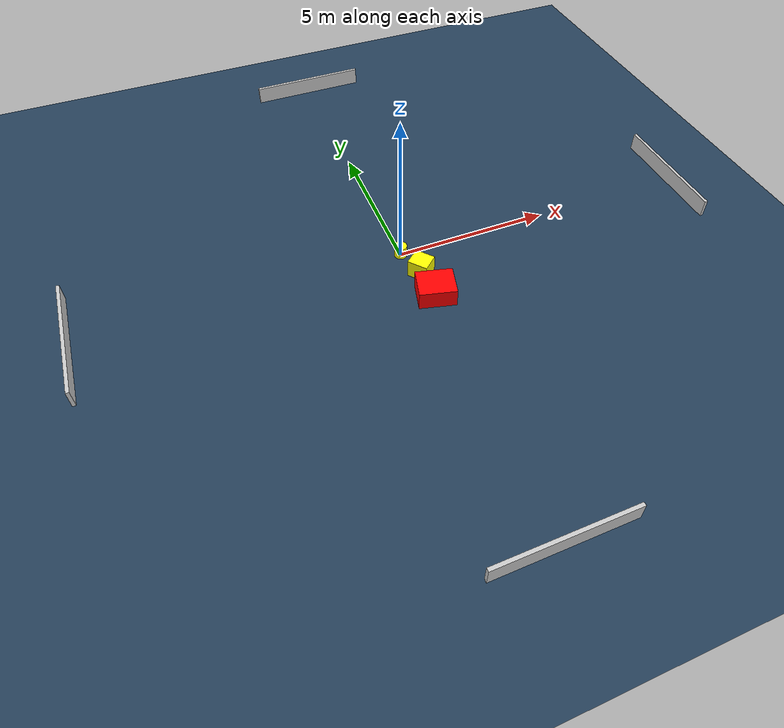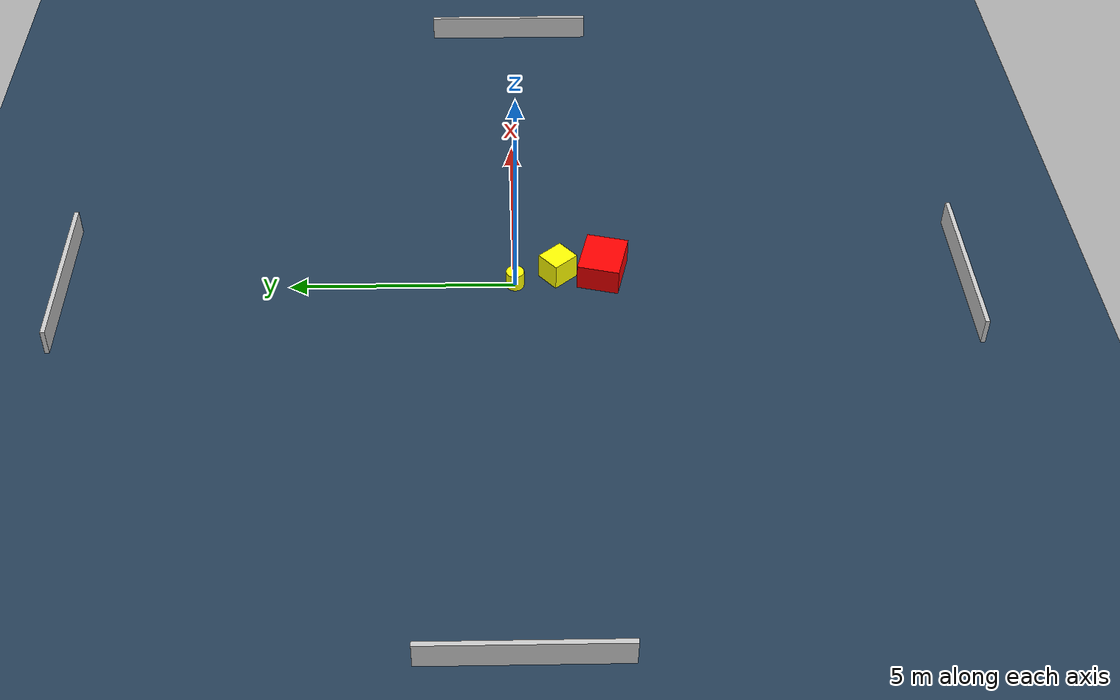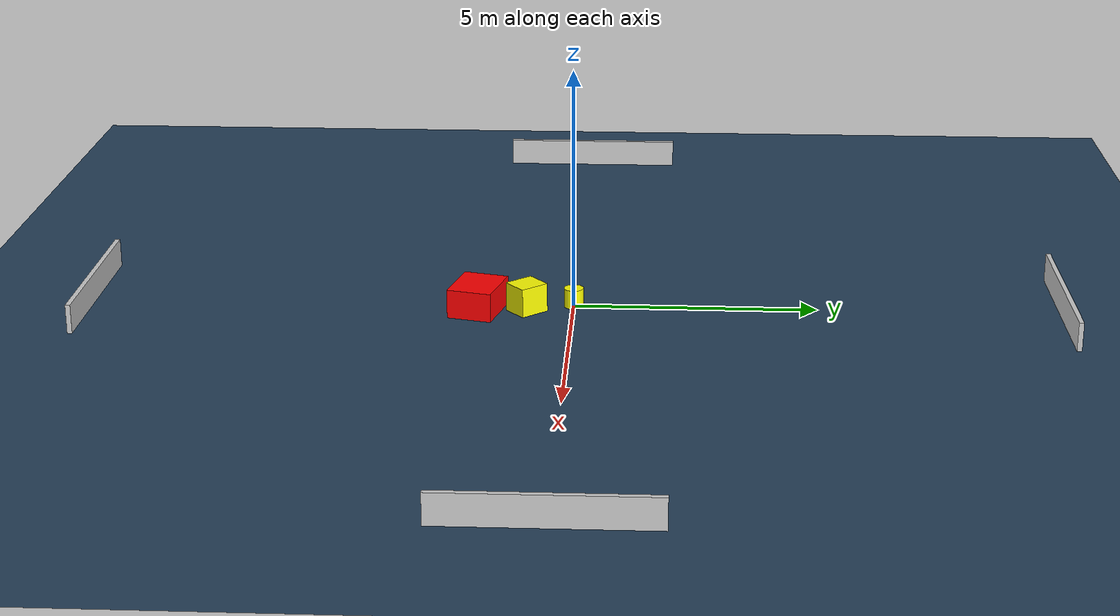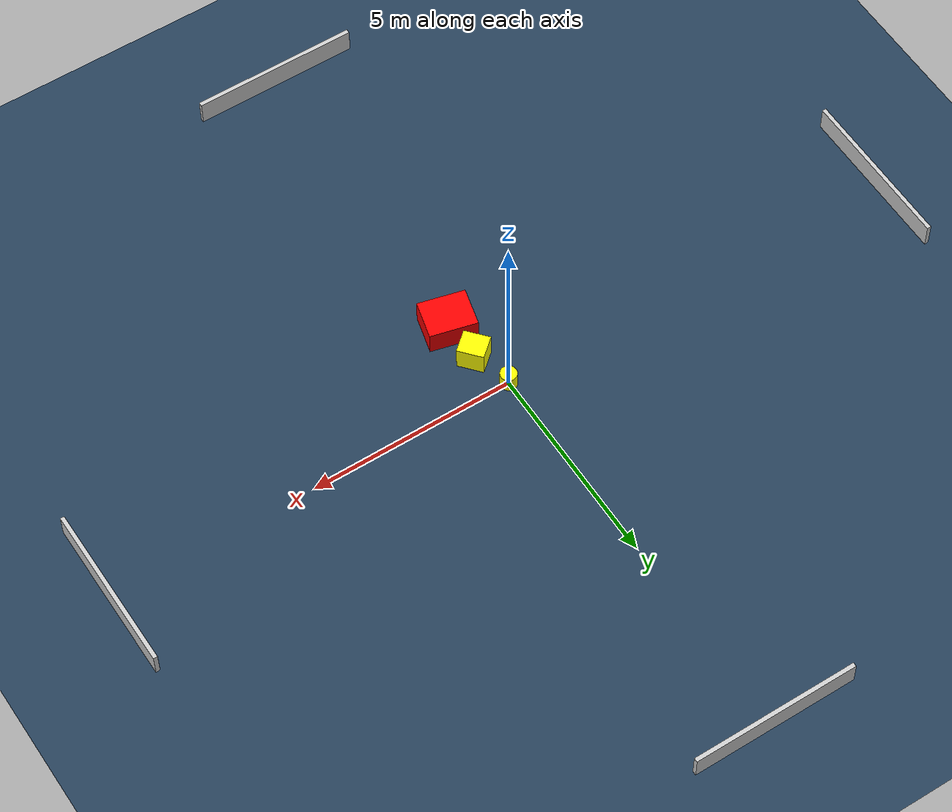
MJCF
<?xml version="1.0" ?>
<mujoco model="generated_environment">
  <option timestep="0.01" integrator="RK4" cone="elliptic"/>
  <default>
    <geom density="1"/>
  </default>
  <asset>
    <texture builtin="gradient" height="3072" name="skybox" rgb1="0.3 0.5 0.7" rgb2="0 0 0" type="skybox" width="512"/>
    <texture builtin="checker" height="300" name="groundplane" rgb1="0.2 0.3 0.4" rgb2="0.1 0.2 0.3" type="2d" width="300"/>
    <material name="groundplane" reflectance="0.2" texrepeat="5 5" texture="groundplane"/>
  </asset>
  <worldbody>
    <light dir="0 0 -1" directional="true" pos="0 0 1.5"/>
    <geom condim="3" friction="0.5 0.005 0.001" material="groundplane" name="floor" pos="0 0 0" size="0 0 0.05" type="plane"/>
    <body name="walls">
      <geom name="wall_1" condim="4" pos="-10.0 0.0 0.3" rgba="0.800000011920929 0.800000011920929 0.800000011920929 1.0" size="0.05 2.0 0.3" type="box"/>
      <geom name="wall_2" condim="4" pos="10.0 0.0 0.3" rgba="0.800000011920929 0.800000011920929 0.800000011920929 1.0" size="0.05 2.0 0.3" type="box"/>
      <geom name="wall_3" condim="4" pos="0.0 -10.0 0.3" rgba="0.800000011920929 0.800000011920929 0.800000011920929 1.0" size="2.0 0.05 0.3" type="box"/>
      <geom name="wall_4" condim="4" pos="0.0 10.0 0.3" rgba="0.800000011920929 0.800000011920929 0.800000011920929 1.0" size="2.0 0.05 0.3" type="box"/>
    </body>
    <body name="robot">
      <joint name="joint_x" type="slide" pos="0 0 0" axis="1 0 0"/>
      <joint name="joint_y" type="slide" pos="0 0 0" axis="0 1 0"/>
      <geom name="robot" type="cylinder" pos="0.0 0.0 0.2" size="0.2 0.2 0.0" mass="5.0" friction="1.0 0.005 0.0001" condim="4" rgba="1.0 1.0 0.0 1.0"/>
    </body>
    <body name="obstacle_1_movable">
      <geom name="obstacle_1_movable" condim="4" pos="0.2949272069122084 -0.9561838889856064 0.3" euler="0 0 220.73290435334798" friction="0.0 0.005 0.001" rgba="1.0 1.0 0.0 1.0" size="0.28289922875672735 0.31729885225957966 0.3" type="box" mass="0.1"/>
      <joint type="free"/>
    </body>
    <body name="obstacle_2_static">
      <geom name="obstacle_2_static" condim="4" pos="0.3417412309081793 -1.9591434310860478 0.3" euler="0 0 345.91698372428084" friction="0.0 0.005 0.001" rgba="1.0 0.0 0.0 1.0" size="0.5702268889340341 0.4662181601059225 0.3" type="box"/>
    </body>
  </worldbody>
  <actuator>
    <motor name="actuator_x" joint="joint_x" gear="1" ctrlrange="-1 1"/>
    <motor name="actuator_y" joint="joint_y" gear="1" ctrlrange="-1 1"/>
  </actuator>
</mujoco>
